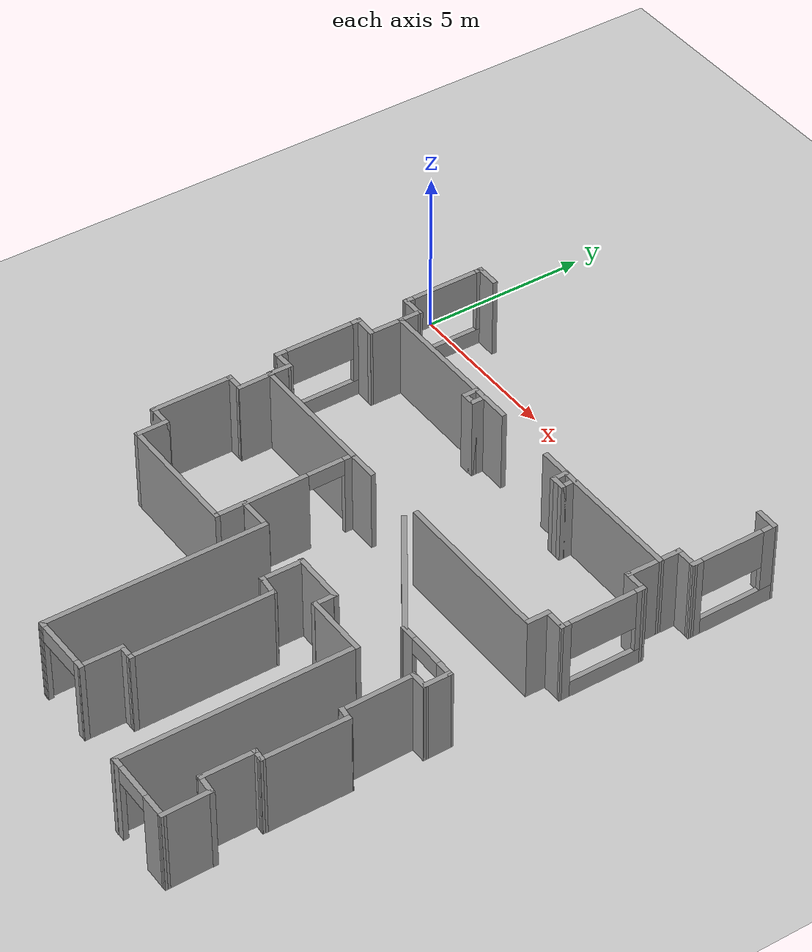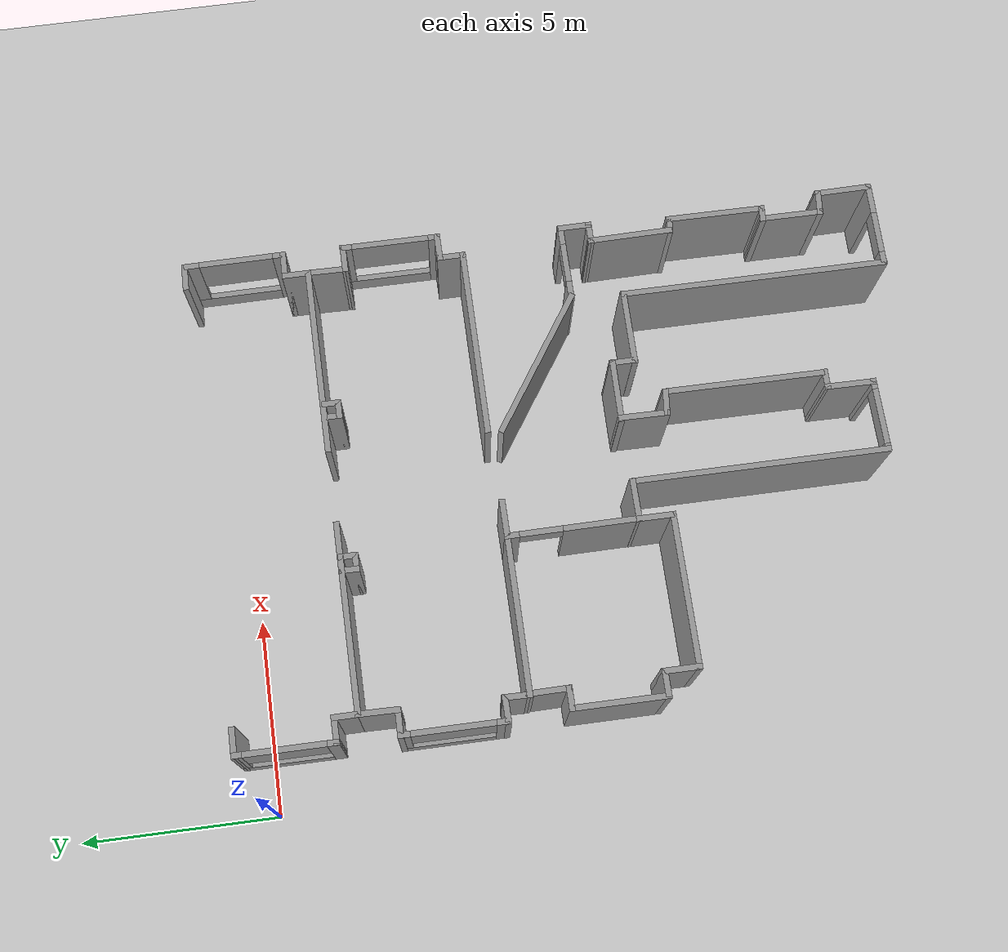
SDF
<sdf version="1.6">
 <world name="default">
  <model name="ground_plane">
   <static>1</static>
   <link name="link">
    <collision name="collision">
     <geometry><plane><normal>0 0 1</normal><size>100 100</size></plane></geometry>
     <surface><friction><ode><mu>100</mu><mu2>50</mu2></ode></friction></surface>
    </collision>
    <visual name="visual">
     <cast_shadows>0</cast_shadows>
     <geometry><plane><normal>0 0 1</normal><size>100 100</size></plane></geometry>
     <material>
      <script><uri>file://media/materials/scripts/gazebo.material</uri><name>Gazebo/Grey</name></script>
     </material>
    </visual>
   </link>
  </model>
  <model name="Ex-diei">
   <pose>7.71315 -3.61023 0 0 -0 0</pose>
   <link name="Wall_10">
    <collision name="Wall_10_Collision">
     <geometry><box><size>1.32907 0.15 2.5</size></box></geometry>
     <pose>0 0 1.25 0 -0 0</pose>
    </collision>
    <visual name="Wall_10_Visual">
     <pose>0 0 1.25 0 -0 0</pose>
     <geometry><box><size>1.32907 0.15 2.5</size></box></geometry>
     <material>
      <script><uri>file://media/materials/scripts/gazebo.material</uri><name>Gazebo/Grey</name></script>
      <ambient>1 1 1 1</ambient>
     </material>
    </visual>
    <pose>0.944777 -12.0468 0 0 -0 1.55789</pose>
   </link>
   <link name="Wall_11">
    <collision name="Wall_11_Collision">
     <geometry><box><size>0.5516 0.15 2.5</size></box></geometry>
     <pose>0 0 1.25 0 -0 0</pose>
    </collision>
    <visual name="Wall_11_Visual">
     <pose>0 0 1.25 0 -0 0</pose>
     <geometry><box><size>0.5516 0.15 2.5</size></box></geometry>
     <material>
      <script><uri>file://media/materials/scripts/gazebo.material</uri><name>Gazebo/Grey</name></script>
      <ambient>1 1 1 1</ambient>
     </material>
    </visual>
    <pose>1.15318 -11.4585 0 0 0 -0.004913</pose>
   </link>
   <link name="Wall_119">
    <collision name="Wall_119_Collision">
     <geometry><box><size>5 0.15 2.5</size></box></geometry>
     <pose>0 0 1.25 0 -0 0</pose>
    </collision>
    <visual name="Wall_119_Visual">
     <pose>0 0 1.25 0 -0 0</pose>
     <geometry><box><size>5 0.15 2.5</size></box></geometry>
     <material>
      <script><uri>file://media/materials/scripts/gazebo.material</uri><name>Gazebo/Grey</name></script>
      <ambient>1 1 1 1</ambient>
     </material>
    </visual>
    <pose>3.38195 1.30322 0 0 -0 0</pose>
   </link>
   <link name="Wall_12">
    <collision name="Wall_12_Collision">
     <geometry><box><size>4.25837 0.15 2.5</size></box></geometry>
     <pose>0 0 1.25 0 -0 0</pose>
    </collision>
    <visual name="Wall_12_Visual">
     <pose>0 0 1.25 0 -0 0</pose>
     <geometry><box><size>4.25837 0.15 2.5</size></box></geometry>
     <material>
      <script><uri>file://media/materials/scripts/gazebo.material</uri><name>Gazebo/Grey</name></script>
      <ambient>1 1 1 1</ambient>
     </material>
    </visual>
    <pose>1.35469 -9.4053 0 0 -0 1.56675</pose>
   </link>
   <link name="Wall_120">
    <collision name="Wall_120_Collision">
     <geometry><box><size>0.75 0.15 2.5</size></box></geometry>
     <pose>0 0 1.25 0 -0 0</pose>
    </collision>
    <visual name="Wall_120_Visual">
     <pose>0 0 1.25 0 -0 0</pose>
     <geometry><box><size>0.75 0.15 2.5</size></box></geometry>
     <material>
      <script><uri>file://media/materials/scripts/gazebo.material</uri><name>Gazebo/Grey</name></script>
      <ambient>1 1 1 1</ambient>
     </material>
    </visual>
    <pose>5.80695 1.60322 0 0 -0 1.5708</pose>
   </link>
   <link name="Wall_121">
    <collision name="Wall_121_Collision">
     <geometry><box><size>0.75 0.15 2.5</size></box></geometry>
     <pose>0 0 1.25 0 -0 0</pose>
    </collision>
    <visual name="Wall_121_Visual">
     <pose>0 0 1.25 0 -0 0</pose>
     <geometry><box><size>0.75 0.15 2.5</size></box></geometry>
     <material>
      <script><uri>file://media/materials/scripts/gazebo.material</uri><name>Gazebo/Grey</name></script>
      <ambient>1 1 1 1</ambient>
     </material>
    </visual>
    <pose>6.10695 1.90322 0 0 -0 0</pose>
   </link>
   <link name="Wall_122">
    <pose>6.39956 3.18474 0 0 -0 1.57656</pose>
    <visual name="Wall_122_Visual_0">
     <pose>-1.18243 0 1.25 0 -0 0</pose>
     <geometry><box><size>0.348224 0.15 2.5</size></box></geometry>
     <material>
      <script><uri>file://media/materials/scripts/gazebo.material</uri><name>Gazebo/Grey</name></script>
      <ambient>1 1 1 1</ambient>
     </material>
    </visual>
    <collision name="Wall_122_Collision_0">
     <geometry><box><size>0.348224 0.15 2.5</size></box></geometry>
     <pose>-1.18243 0 1.25 0 -0 0</pose>
    </collision>
    <visual name="Wall_122_Visual_1">
     <pose>0.174112 0 0.25 0 -0 0</pose>
     <geometry><box><size>2.36486 0.15 0.5</size></box></geometry>
     <material>
      <script><uri>file://media/materials/scripts/gazebo.material</uri><name>Gazebo/Grey</name></script>
      <ambient>1 1 1 1</ambient>
     </material>
    </visual>
    <collision name="Wall_122_Collision_1">
     <geometry><box><size>2.36486 0.15 0.5</size></box></geometry>
     <pose>0.174112 0 0.25 0 -0 0</pose>
    </collision>
    <visual name="Wall_122_Visual_2">
     <pose>1.12978 0 1.5 0 -0 0</pose>
     <geometry><box><size>0.453513 0.15 2</size></box></geometry>
     <material>
      <script><uri>file://media/materials/scripts/gazebo.material</uri><name>Gazebo/Grey</name></script>
      <ambient>1 1 1 1</ambient>
     </material>
    </visual>
    <collision name="Wall_122_Collision_2">
     <geometry><box><size>0.453513 0.15 2</size></box></geometry>
     <pose>1.12978 0 1.5 0 -0 0</pose>
    </collision>
    <visual name="Wall_122_Visual_3">
     <pose>-0.052644 0 1.9 0 -0 0</pose>
     <geometry><box><size>1.91135 0.15 1.2</size></box></geometry>
     <material>
      <script><uri>file://media/materials/scripts/gazebo.material</uri><name>Gazebo/Grey</name></script>
      <ambient>1 1 1 1</ambient>
     </material>
    </visual>
    <collision name="Wall_122_Collision_3">
     <geometry><box><size>1.91135 0.15 1.2</size></box></geometry>
     <pose>-0.052644 0 1.9 0 -0 0</pose>
    </collision>
   </link>
   <link name="Wall_123">
    <collision name="Wall_123_Collision">
     <geometry><box><size>0.716608 0.15 2.5</size></box></geometry>
     <pose>0 0 1.25 0 -0 0</pose>
    </collision>
    <visual name="Wall_123_Visual">
     <pose>0 0 1.25 0 -0 0</pose>
     <geometry><box><size>0.716608 0.15 2.5</size></box></geometry>
     <material>
      <script><uri>file://media/materials/scripts/gazebo.material</uri><name>Gazebo/Grey</name></script>
      <ambient>1 1 1 1</ambient>
     </material>
    </visual>
    <pose>6.10886 4.47426 0 0 -0 3.12641</pose>
   </link>
   <link name="Wall_13">
    <collision name="Wall_13_Collision">
     <geometry><box><size>0.707666 0.15 2.5</size></box></geometry>
     <pose>0 0 1.25 0 -0 0</pose>
    </collision>
    <visual name="Wall_13_Visual">
     <pose>0 0 1.25 0 -0 0</pose>
     <geometry><box><size>0.707666 0.15 2.5</size></box></geometry>
     <material>
      <script><uri>file://media/materials/scripts/gazebo.material</uri><name>Gazebo/Grey</name></script>
      <ambient>1 1 1 1</ambient>
     </material>
    </visual>
    <pose>1.08546 -7.32452 0 0 -0 3.046</pose>
   </link>
   <link name="Wall_132">
    <collision name="Wall_132_Collision">
     <geometry><box><size>5 0.15 2.5</size></box></geometry>
     <pose>0 0 1.25 0 -0 0</pose>
    </collision>
    <visual name="Wall_132_Visual">
     <pose>0 0 1.25 0 -0 0</pose>
     <geometry><box><size>5 0.15 2.5</size></box></geometry>
     <material>
      <script><uri>file://media/materials/scripts/gazebo.material</uri><name>Gazebo/Grey</name></script>
      <ambient>1 1 1 1</ambient>
     </material>
    </visual>
    <pose>3.36331 -2.7403 0 0 -0 0</pose>
   </link>
   <link name="Wall_133">
    <collision name="Wall_133_Collision">
     <geometry><box><size>0.75 0.15 2.5</size></box></geometry>
     <pose>0 0 1.25 0 -0 0</pose>
    </collision>
    <visual name="Wall_133_Visual">
     <pose>0 0 1.25 0 -0 0</pose>
     <geometry><box><size>0.75 0.15 2.5</size></box></geometry>
     <material>
      <script><uri>file://media/materials/scripts/gazebo.material</uri><name>Gazebo/Grey</name></script>
      <ambient>1 1 1 1</ambient>
     </material>
    </visual>
    <pose>5.78831 -2.4403 0 0 -0 1.5708</pose>
   </link>
   <link name="Wall_134">
    <collision name="Wall_134_Collision">
     <geometry><box><size>0.75 0.15 2.5</size></box></geometry>
     <pose>0 0 1.25 0 -0 0</pose>
    </collision>
    <visual name="Wall_134_Visual">
     <pose>0 0 1.25 0 -0 0</pose>
     <geometry><box><size>0.75 0.15 2.5</size></box></geometry>
     <material>
      <script><uri>file://media/materials/scripts/gazebo.material</uri><name>Gazebo/Grey</name></script>
      <ambient>1 1 1 1</ambient>
     </material>
    </visual>
    <pose>6.08831 -2.1403 0 0 -0 0</pose>
   </link>
   <link name="Wall_135">
    <pose>6.39016 -0.900619 0 0 -0 1.56931</pose>
    <visual name="Wall_135_Visual_0">
     <pose>-1.15835 0 1.25 0 -0 0</pose>
     <geometry><box><size>0.312668 0.15 2.5</size></box></geometry>
     <material>
      <script><uri>file://media/materials/scripts/gazebo.material</uri><name>Gazebo/Grey</name></script>
      <ambient>1 1 1 1</ambient>
     </material>
    </visual>
    <collision name="Wall_135_Collision_0">
     <geometry><box><size>0.312668 0.15 2.5</size></box></geometry>
     <pose>-1.15835 0 1.25 0 -0 0</pose>
    </collision>
    <visual name="Wall_135_Visual_1">
     <pose>0.156334 0 0.25 0 -0 0</pose>
     <geometry><box><size>2.3167 0.15 0.5</size></box></geometry>
     <material>
      <script><uri>file://media/materials/scripts/gazebo.material</uri><name>Gazebo/Grey</name></script>
      <ambient>1 1 1 1</ambient>
     </material>
    </visual>
    <collision name="Wall_135_Collision_1">
     <geometry><box><size>2.3167 0.15 0.5</size></box></geometry>
     <pose>0.156334 0 0.25 0 -0 0</pose>
    </collision>
    <visual name="Wall_135_Visual_2">
     <pose>1.16086 0 1.5 0 -0 0</pose>
     <geometry><box><size>0.30765 0.15 2</size></box></geometry>
     <material>
      <script><uri>file://media/materials/scripts/gazebo.material</uri><name>Gazebo/Grey</name></script>
      <ambient>1 1 1 1</ambient>
     </material>
    </visual>
    <collision name="Wall_135_Collision_2">
     <geometry><box><size>0.30765 0.15 2</size></box></geometry>
     <pose>1.16086 0 1.5 0 -0 0</pose>
    </collision>
    <visual name="Wall_135_Visual_3">
     <pose>0.002509 0 1.9 0 -0 0</pose>
     <geometry><box><size>2.00905 0.15 1.2</size></box></geometry>
     <material>
      <script><uri>file://media/materials/scripts/gazebo.material</uri><name>Gazebo/Grey</name></script>
      <ambient>1 1 1 1</ambient>
     </material>
    </visual>
    <collision name="Wall_135_Collision_3">
     <geometry><box><size>2.00905 0.15 1.2</size></box></geometry>
     <pose>0.002509 0 1.9 0 -0 0</pose>
    </collision>
   </link>
   <link name="Wall_136">
    <collision name="Wall_136_Collision">
     <geometry><box><size>0.75 0.15 2.5</size></box></geometry>
     <pose>0 0 1.25 0 -0 0</pose>
    </collision>
    <visual name="Wall_136_Visual">
     <pose>0 0 1.25 0 -0 0</pose>
     <geometry><box><size>0.75 0.15 2.5</size></box></geometry>
     <material>
      <script><uri>file://media/materials/scripts/gazebo.material</uri><name>Gazebo/Grey</name></script>
      <ambient>1 1 1 1</ambient>
     </material>
    </visual>
    <pose>6.09201 0.335366 0 0 -0 3.14159</pose>
   </link>
   <link name="Wall_137">
    <collision name="Wall_137_Collision">
     <geometry><box><size>1.11427 0.15 2.5</size></box></geometry>
     <pose>0 0 1.25 0 -0 0</pose>
    </collision>
    <visual name="Wall_137_Visual">
     <pose>0 0 1.25 0 -0 0</pose>
     <geometry><box><size>1.11427 0.15 2.5</size></box></geometry>
     <material>
      <script><uri>file://media/materials/scripts/gazebo.material</uri><name>Gazebo/Grey</name></script>
      <ambient>1 1 1 1</ambient>
     </material>
    </visual>
    <pose>5.79948 0.821141 0 0 -0 1.5553</pose>
   </link>
   <link name="Wall_139">
    <collision name="Wall_139_Collision">
     <geometry><box><size>0.5 0.15 2.5</size></box></geometry>
     <pose>0 0 1.25 0 -0 0</pose>
    </collision>
    <visual name="Wall_139_Visual">
     <pose>0 0 1.25 0 -0 0</pose>
     <geometry><box><size>0.5 0.15 2.5</size></box></geometry>
     <material>
      <script><uri>file://media/materials/scripts/gazebo.material</uri><name>Gazebo/Grey</name></script>
      <ambient>1 1 1 1</ambient>
     </material>
    </visual>
    <pose>1.81114 1.09434 0 0 0 -1.5708</pose>
   </link>
   <link name="Wall_14">
    <collision name="Wall_14_Collision">
     <geometry><box><size>1.32107 0.15 2.5</size></box></geometry>
     <pose>0 0 1.25 0 -0 0</pose>
    </collision>
    <visual name="Wall_14_Visual">
     <pose>0 0 1.25 0 -0 0</pose>
     <geometry><box><size>1.32107 0.15 2.5</size></box></geometry>
     <material>
      <script><uri>file://media/materials/scripts/gazebo.material</uri><name>Gazebo/Grey</name></script>
      <ambient>1 1 1 1</ambient>
     </material>
    </visual>
    <pose>0.807898 -6.71237 0 0 -0 1.55781</pose>
   </link>
   <link name="Wall_140">
    <collision name="Wall_140_Collision">
     <geometry><box><size>0.5 0.15 2.5</size></box></geometry>
     <pose>0 0 1.25 0 -0 0</pose>
    </collision>
    <visual name="Wall_140_Visual">
     <pose>0 0 1.25 0 -0 0</pose>
     <geometry><box><size>0.5 0.15 2.5</size></box></geometry>
     <material>
      <script><uri>file://media/materials/scripts/gazebo.material</uri><name>Gazebo/Grey</name></script>
      <ambient>1 1 1 1</ambient>
     </material>
    </visual>
    <pose>1.98614 0.919343 0 0 -0 0</pose>
   </link>
   <link name="Wall_141">
    <collision name="Wall_141_Collision">
     <geometry><box><size>0.5 0.15 2.5</size></box></geometry>
     <pose>0 0 1.25 0 -0 0</pose>
    </collision>
    <visual name="Wall_141_Visual">
     <pose>0 0 1.25 0 -0 0</pose>
     <geometry><box><size>0.5 0.15 2.5</size></box></geometry>
     <material>
      <script><uri>file://media/materials/scripts/gazebo.material</uri><name>Gazebo/Grey</name></script>
      <ambient>1 1 1 1</ambient>
     </material>
    </visual>
    <pose>2.16114 1.09434 0 0 -0 1.5708</pose>
   </link>
   <link name="Wall_15">
    <collision name="Wall_15_Collision">
     <geometry><box><size>1.67095 0.15 2.5</size></box></geometry>
     <pose>0 0 1.25 0 -0 0</pose>
    </collision>
    <visual name="Wall_15_Visual">
     <pose>0 0 1.25 0 -0 0</pose>
     <geometry><box><size>1.67095 0.15 2.5</size></box></geometry>
     <material>
      <script><uri>file://media/materials/scripts/gazebo.material</uri><name>Gazebo/Grey</name></script>
      <ambient>1 1 1 1</ambient>
     </material>
    </visual>
    <pose>1.55313 -6.13444 0 0 0 -0.01</pose>
   </link>
   <link name="Wall_16">
    <collision name="Wall_16_Collision">
     <geometry><box><size>0.726398 0.15 2.5</size></box></geometry>
     <pose>0 0 1.25 0 -0 0</pose>
    </collision>
    <visual name="Wall_16_Visual">
     <pose>0 0 1.25 0 -0 0</pose>
     <geometry><box><size>0.726398 0.15 2.5</size></box></geometry>
     <material>
      <script><uri>file://media/materials/scripts/gazebo.material</uri><name>Gazebo/Grey</name></script>
      <ambient>1 1 1 1</ambient>
     </material>
    </visual>
    <pose>2.30936 -6.43021 0 0 0 -1.55899</pose>
   </link>
   <link name="Wall_17">
    <collision name="Wall_17_Collision">
     <geometry><box><size>2.00096 0.15 2.5</size></box></geometry>
     <pose>0 0 1.25 0 -0 0</pose>
    </collision>
    <visual name="Wall_17_Visual">
     <pose>0 0 1.25 0 -0 0</pose>
     <geometry><box><size>2.00096 0.15 2.5</size></box></geometry>
     <material>
      <script><uri>file://media/materials/scripts/gazebo.material</uri><name>Gazebo/Grey</name></script>
      <ambient>1 1 1 1</ambient>
     </material>
    </visual>
    <pose>3.23063 -6.71457 0 0 0 -0.004108</pose>
   </link>
   <link name="Wall_18">
    <collision name="Wall_18_Collision">
     <geometry><box><size>7 0.15 2.5</size></box></geometry>
     <pose>0 0 1.25 0 -0 0</pose>
    </collision>
    <visual name="Wall_18_Visual">
     <pose>0 0 1.25 0 -0 0</pose>
     <geometry><box><size>7 0.15 2.5</size></box></geometry>
     <material>
      <script><uri>file://media/materials/scripts/gazebo.material</uri><name>Gazebo/Grey</name></script>
      <ambient>1 1 1 1</ambient>
     </material>
    </visual>
    <pose>4.1485 -10.151 0 0 0 -1.5708</pose>
   </link>
   <link name="Wall_19">
    <pose>5.23985 -13.5798 0 0 0 -0.010525</pose>
    <visual name="Wall_19_Visual_0">
     <pose>-0.977654 0 1.25 0 -0 0</pose>
     <geometry><box><size>0.362307 0.15 2.5</size></box></geometry>
     <material>
      <script><uri>file://media/materials/scripts/gazebo.material</uri><name>Gazebo/Grey</name></script>
      <ambient>1 1 1 1</ambient>
     </material>
    </visual>
    <collision name="Wall_19_Collision_0">
     <geometry><box><size>0.362307 0.15 2.5</size></box></geometry>
     <pose>-0.977654 0 1.25 0 -0 0</pose>
    </collision>
    <visual name="Wall_19_Visual_1">
     <pose>0.744469 0 1.25 0 -0 0</pose>
     <geometry><box><size>0.828677 0.15 2.5</size></box></geometry>
     <material>
      <script><uri>file://media/materials/scripts/gazebo.material</uri><name>Gazebo/Grey</name></script>
      <ambient>1 1 1 1</ambient>
     </material>
    </visual>
    <collision name="Wall_19_Collision_1">
     <geometry><box><size>0.828677 0.15 2.5</size></box></geometry>
     <pose>0.744469 0 1.25 0 -0 0</pose>
    </collision>
    <visual name="Wall_19_Visual_2">
     <pose>-0.233185 0 2.25 0 -0 0</pose>
     <geometry><box><size>1.12663 0.15 0.5</size></box></geometry>
     <material>
      <script><uri>file://media/materials/scripts/gazebo.material</uri><name>Gazebo/Grey</name></script>
      <ambient>1 1 1 1</ambient>
     </material>
    </visual>
    <collision name="Wall_19_Collision_2">
     <geometry><box><size>1.12663 0.15 0.5</size></box></geometry>
     <pose>-0.233185 0 2.25 0 -0 0</pose>
    </collision>
   </link>
   <link name="Wall_20">
    <collision name="Wall_20_Collision">
     <geometry><box><size>1.5 0.15 2.5</size></box></geometry>
     <pose>0 0 1.25 0 -0 0</pose>
    </collision>
    <visual name="Wall_20_Visual">
     <pose>0 0 1.25 0 -0 0</pose>
     <geometry><box><size>1.5 0.15 2.5</size></box></geometry>
     <material>
      <script><uri>file://media/materials/scripts/gazebo.material</uri><name>Gazebo/Grey</name></script>
      <ambient>1 1 1 1</ambient>
     </material>
    </visual>
    <pose>6.31599 -12.9162 0 0 -0 1.58206</pose>
   </link>
   <link name="Wall_21">
    <collision name="Wall_21_Collision">
     <geometry><box><size>0.694391 0.15 2.5</size></box></geometry>
     <pose>0 0 1.25 0 -0 0</pose>
    </collision>
    <visual name="Wall_21_Visual">
     <pose>0 0 1.25 0 -0 0</pose>
     <geometry><box><size>0.694391 0.15 2.5</size></box></geometry>
     <material>
      <script><uri>file://media/materials/scripts/gazebo.material</uri><name>Gazebo/Grey</name></script>
      <ambient>1 1 1 1</ambient>
     </material>
    </visual>
    <pose>6.04477 -12.2182 0 0 -0 3.05687</pose>
   </link>
   <link name="Wall_22">
    <collision name="Wall_22_Collision">
     <geometry><box><size>1.67064 0.15 2.5</size></box></geometry>
     <pose>0 0 1.25 0 -0 0</pose>
    </collision>
    <visual name="Wall_22_Visual">
     <pose>0 0 1.25 0 -0 0</pose>
     <geometry><box><size>1.67064 0.15 2.5</size></box></geometry>
     <material>
      <script><uri>file://media/materials/scripts/gazebo.material</uri><name>Gazebo/Grey</name></script>
      <ambient>1 1 1 1</ambient>
     </material>
    </visual>
    <pose>5.78435 -11.4348 0 0 -0 1.5666</pose>
   </link>
   <link name="Wall_23">
    <collision name="Wall_23_Collision">
     <geometry><box><size>0.447159 0.15 2.5</size></box></geometry>
     <pose>0 0 1.25 0 -0 0</pose>
    </collision>
    <visual name="Wall_23_Visual">
     <pose>0 0 1.25 0 -0 0</pose>
     <geometry><box><size>0.447159 0.15 2.5</size></box></geometry>
     <material>
      <script><uri>file://media/materials/scripts/gazebo.material</uri><name>Gazebo/Grey</name></script>
      <ambient>1 1 1 1</ambient>
     </material>
    </visual>
    <pose>5.92832 -10.6821 0 0 0 -0.051203</pose>
   </link>
   <link name="Wall_24">
    <collision name="Wall_24_Collision">
     <geometry><box><size>2.61047 0.15 2.5</size></box></geometry>
     <pose>0 0 1.25 0 -0 0</pose>
    </collision>
    <visual name="Wall_24_Visual">
     <pose>0 0 1.25 0 -0 0</pose>
     <geometry><box><size>2.61047 0.15 2.5</size></box></geometry>
     <material>
      <script><uri>file://media/materials/scripts/gazebo.material</uri><name>Gazebo/Grey</name></script>
      <ambient>1 1 1 1</ambient>
     </material>
    </visual>
    <pose>6.08397 -9.45949 0 0 -0 1.56489</pose>
   </link>
   <link name="Wall_25">
    <collision name="Wall_25_Collision">
     <geometry><box><size>0.465275 0.15 2.5</size></box></geometry>
     <pose>0 0 1.25 0 -0 0</pose>
    </collision>
    <visual name="Wall_25_Visual">
     <pose>0 0 1.25 0 -0 0</pose>
     <geometry><box><size>0.465275 0.15 2.5</size></box></geometry>
     <material>
      <script><uri>file://media/materials/scripts/gazebo.material</uri><name>Gazebo/Grey</name></script>
      <ambient>1 1 1 1</ambient>
     </material>
    </visual>
    <pose>5.92821 -8.21622 0 0 -0 3.01648</pose>
   </link>
   <link name="Wall_26">
    <collision name="Wall_26_Collision">
     <geometry><box><size>2.23033 0.15 2.5</size></box></geometry>
     <pose>0 0 1.25 0 -0 0</pose>
    </collision>
    <visual name="Wall_26_Visual">
     <pose>0 0 1.25 0 -0 0</pose>
     <geometry><box><size>2.23033 0.15 2.5</size></box></geometry>
     <material>
      <script><uri>file://media/materials/scripts/gazebo.material</uri><name>Gazebo/Grey</name></script>
      <ambient>1 1 1 1</ambient>
     </material>
    </visual>
    <pose>5.76519 -7.14985 0 0 -0 1.58351</pose>
   </link>
   <link name="Wall_27">
    <collision name="Wall_27_Collision">
     <geometry><box><size>0.603301 0.15 2.5</size></box></geometry>
     <pose>0 0 1.25 0 -0 0</pose>
    </collision>
    <visual name="Wall_27_Visual">
     <pose>0 0 1.25 0 -0 0</pose>
     <geometry><box><size>0.603301 0.15 2.5</size></box></geometry>
     <material>
      <script><uri>file://media/materials/scripts/gazebo.material</uri><name>Gazebo/Grey</name></script>
      <ambient>1 1 1 1</ambient>
     </material>
    </visual>
    <pose>5.97861 -6.1116 0 0 0 -0.008064</pose>
   </link>
   <link name="Wall_28">
    <collision name="Wall_28_Collision">
     <geometry><box><size>0.887652 0.15 2.5</size></box></geometry>
     <pose>0 0 1.25 0 -0 0</pose>
    </collision>
    <visual name="Wall_28_Visual">
     <pose>0 0 1.25 0 -0 0</pose>
     <geometry><box><size>0.887652 0.15 2.5</size></box></geometry>
     <material>
      <script><uri>file://media/materials/scripts/gazebo.material</uri><name>Gazebo/Grey</name></script>
      <ambient>1 1 1 1</ambient>
     </material>
    </visual>
    <pose>6.20344 -5.73799 0 0 -0 1.57573</pose>
   </link>
   <link name="Wall_29">
    <pose>5.23289 -5.36917 0 0 -0 3.14159</pose>
    <visual name="Wall_29_Visual_0">
     <pose>-0.77648 0 1.25 0 -0 0</pose>
     <geometry><box><size>0.534502 0.15 2.5</size></box></geometry>
     <material>
      <script><uri>file://media/materials/scripts/gazebo.material</uri><name>Gazebo/Grey</name></script>
      <ambient>1 1 1 1</ambient>
     </material>
    </visual>
    <collision name="Wall_29_Collision_0">
     <geometry><box><size>0.534502 0.15 2.5</size></box></geometry>
     <pose>-0.77648 0 1.25 0 -0 0</pose>
    </collision>
    <visual name="Wall_29_Visual_1">
     <pose>0.795903 0 1.25 0 -0 0</pose>
     <geometry><box><size>0.495656 0.15 2.5</size></box></geometry>
     <material>
      <script><uri>file://media/materials/scripts/gazebo.material</uri><name>Gazebo/Grey</name></script>
      <ambient>1 1 1 1</ambient>
     </material>
    </visual>
    <collision name="Wall_29_Collision_1">
     <geometry><box><size>0.495656 0.15 2.5</size></box></geometry>
     <pose>0.795903 0 1.25 0 -0 0</pose>
    </collision>
    <visual name="Wall_29_Visual_2">
     <pose>0.019423 0 2.25 0 -0 0</pose>
     <geometry><box><size>1.0573 0.15 0.5</size></box></geometry>
     <material>
      <script><uri>file://media/materials/scripts/gazebo.material</uri><name>Gazebo/Grey</name></script>
      <ambient>1 1 1 1</ambient>
     </material>
    </visual>
    <collision name="Wall_29_Collision_2">
     <geometry><box><size>1.0573 0.15 0.5</size></box></geometry>
     <pose>0.019423 0 2.25 0 -0 0</pose>
    </collision>
   </link>
   <link name="Wall_30">
    <collision name="Wall_30_Collision">
     <geometry><box><size>4.20959 0.15 2.5</size></box></geometry>
     <pose>0 0 1.25 0 -0 0</pose>
    </collision>
    <visual name="Wall_30_Visual">
     <pose>0 0 1.25 0 -0 0</pose>
     <geometry><box><size>4.20959 0.15 2.5</size></box></geometry>
     <material>
      <script><uri>file://media/materials/scripts/gazebo.material</uri><name>Gazebo/Grey</name></script>
      <ambient>1 1 1 1</ambient>
     </material>
    </visual>
    <pose>2.57899 -4.23767 0 0 -0 2.55029</pose>
   </link>
   <link name="Wall_5">
    <collision name="Wall_5_Collision">
     <geometry><box><size>1.04089 0.15 2.5</size></box></geometry>
     <pose>0 0 1.25 0 -0 0</pose>
    </collision>
    <visual name="Wall_5_Visual">
     <pose>0 0 1.25 0 -0 0</pose>
     <geometry><box><size>1.04089 0.15 2.5</size></box></geometry>
     <material>
      <script><uri>file://media/materials/scripts/gazebo.material</uri><name>Gazebo/Grey</name></script>
      <ambient>1 1 1 1</ambient>
     </material>
    </visual>
    <pose>-1.4316 -2.84662 0 0 0 -3.13391</pose>
   </link>
   <link name="Wall_59">
    <collision name="Wall_59_Collision">
     <geometry><box><size>4.90246 0.15 2.5</size></box></geometry>
     <pose>0 0 1.25 0 -0 0</pose>
    </collision>
    <visual name="Wall_59_Visual">
     <pose>0 0 1.25 0 -0 0</pose>
     <geometry><box><size>4.90246 0.15 2.5</size></box></geometry>
     <material>
      <script><uri>file://media/materials/scripts/gazebo.material</uri><name>Gazebo/Grey</name></script>
      <ambient>1 1 1 1</ambient>
     </material>
    </visual>
    <pose>-3.3966 1.30411 0 0 -0 3.14142</pose>
   </link>
   <link name="Wall_6">
    <pose>-1.85855 -4.50368 0 0 0 -1.56488</pose>
    <visual name="Wall_6_Visual_0">
     <pose>-1.54048 0 1.25 0 -0 0</pose>
     <geometry><box><size>0.376373 0.15 2.5</size></box></geometry>
     <material>
      <script><uri>file://media/materials/scripts/gazebo.material</uri><name>Gazebo/Grey</name></script>
      <ambient>1 1 1 1</ambient>
     </material>
    </visual>
    <collision name="Wall_6_Collision_0">
     <geometry><box><size>0.376373 0.15 2.5</size></box></geometry>
     <pose>-1.54048 0 1.25 0 -0 0</pose>
    </collision>
    <visual name="Wall_6_Visual_1">
     <pose>0.736559 0 1.25 0 -0 0</pose>
     <geometry><box><size>1.98422 0.15 2.5</size></box></geometry>
     <material>
      <script><uri>file://media/materials/scripts/gazebo.material</uri><name>Gazebo/Grey</name></script>
      <ambient>1 1 1 1</ambient>
     </material>
    </visual>
    <collision name="Wall_6_Collision_1">
     <geometry><box><size>1.98422 0.15 2.5</size></box></geometry>
     <pose>0.736559 0 1.25 0 -0 0</pose>
    </collision>
    <visual name="Wall_6_Visual_2">
     <pose>-0.803922 0 2.25 0 -0 0</pose>
     <geometry><box><size>1.09674 0.15 0.5</size></box></geometry>
     <material>
      <script><uri>file://media/materials/scripts/gazebo.material</uri><name>Gazebo/Grey</name></script>
      <ambient>1 1 1 1</ambient>
     </material>
    </visual>
    <collision name="Wall_6_Collision_2">
     <geometry><box><size>1.09674 0.15 0.5</size></box></geometry>
     <pose>-0.803922 0 2.25 0 -0 0</pose>
    </collision>
   </link>
   <link name="Wall_60">
    <collision name="Wall_60_Collision">
     <geometry><box><size>0.729453 0.15 2.5</size></box></geometry>
     <pose>0 0 1.25 0 -0 0</pose>
    </collision>
    <visual name="Wall_60_Visual">
     <pose>0 0 1.25 0 -0 0</pose>
     <geometry><box><size>0.729453 0.15 2.5</size></box></geometry>
     <material>
      <script><uri>file://media/materials/scripts/gazebo.material</uri><name>Gazebo/Grey</name></script>
      <ambient>1 1 1 1</ambient>
     </material>
    </visual>
    <pose>-5.77425 1.59388 0 0 -0 1.57569</pose>
   </link>
   <link name="Wall_61">
    <collision name="Wall_61_Collision">
     <geometry><box><size>0.743494 0.15 2.5</size></box></geometry>
     <pose>0 0 1.25 0 -0 0</pose>
    </collision>
    <visual name="Wall_61_Visual">
     <pose>0 0 1.25 0 -0 0</pose>
     <geometry><box><size>0.743494 0.15 2.5</size></box></geometry>
     <material>
      <script><uri>file://media/materials/scripts/gazebo.material</uri><name>Gazebo/Grey</name></script>
      <ambient>1 1 1 1</ambient>
     </material>
    </visual>
    <pose>-6.0724 1.88107 0 0 0 -3.13427</pose>
   </link>
   <link name="Wall_62">
    <pose>-6.37099 3.1091 0 0 -0 1.56876</pose>
    <visual name="Wall_62_Visual_0">
     <pose>-1.15303 0 1.25 0 -0 0</pose>
     <geometry><box><size>0.304344 0.15 2.5</size></box></geometry>
     <material>
      <script><uri>file://media/materials/scripts/gazebo.material</uri><name>Gazebo/Grey</name></script>
      <ambient>1 1 1 1</ambient>
     </material>
    </visual>
    <collision name="Wall_62_Collision_0">
     <geometry><box><size>0.304344 0.15 2.5</size></box></geometry>
     <pose>-1.15303 0 1.25 0 -0 0</pose>
    </collision>
    <visual name="Wall_62_Visual_1">
     <pose>0.152172 0 0.25 0 -0 0</pose>
     <geometry><box><size>2.30606 0.15 0.5</size></box></geometry>
     <material>
      <script><uri>file://media/materials/scripts/gazebo.material</uri><name>Gazebo/Grey</name></script>
      <ambient>1 1 1 1</ambient>
     </material>
    </visual>
    <collision name="Wall_62_Collision_1">
     <geometry><box><size>2.30606 0.15 0.5</size></box></geometry>
     <pose>0.152172 0 0.25 0 -0 0</pose>
    </collision>
    <visual name="Wall_62_Visual_2">
     <pose>1.17637 0 1.5 0 -0 0</pose>
     <geometry><box><size>0.257675 0.15 2</size></box></geometry>
     <material>
      <script><uri>file://media/materials/scripts/gazebo.material</uri><name>Gazebo/Grey</name></script>
      <ambient>1 1 1 1</ambient>
     </material>
    </visual>
    <collision name="Wall_62_Collision_2">
     <geometry><box><size>0.257675 0.15 2</size></box></geometry>
     <pose>1.17637 0 1.5 0 -0 0</pose>
    </collision>
    <visual name="Wall_62_Visual_3">
     <pose>0.023334 0 1.9 0 -0 0</pose>
     <geometry><box><size>2.04839 0.15 1.2</size></box></geometry>
     <material>
      <script><uri>file://media/materials/scripts/gazebo.material</uri><name>Gazebo/Grey</name></script>
      <ambient>1 1 1 1</ambient>
     </material>
    </visual>
    <collision name="Wall_62_Collision_3">
     <geometry><box><size>2.04839 0.15 1.2</size></box></geometry>
     <pose>0.023334 0 1.9 0 -0 0</pose>
    </collision>
   </link>
   <link name="Wall_63">
    <collision name="Wall_63_Collision">
     <geometry><box><size>0.771754 0.15 2.5</size></box></geometry>
     <pose>0 0 1.25 0 -0 0</pose>
    </collision>
    <visual name="Wall_63_Visual">
     <pose>0 0 1.25 0 -0 0</pose>
     <geometry><box><size>0.771754 0.15 2.5</size></box></geometry>
     <material>
      <script><uri>file://media/materials/scripts/gazebo.material</uri><name>Gazebo/Grey</name></script>
      <ambient>1 1 1 1</ambient>
     </material>
    </visual>
    <pose>-6.05761 4.33713 0 0 0 -0.006993</pose>
   </link>
   <link name="Wall_7">
    <collision name="Wall_7_Collision">
     <geometry><box><size>1.12384 0.15 2.5</size></box></geometry>
     <pose>0 0 1.25 0 -0 0</pose>
    </collision>
    <visual name="Wall_7_Visual">
     <pose>0 0 1.25 0 -0 0</pose>
     <geometry><box><size>1.12384 0.15 2.5</size></box></geometry>
     <material>
      <script><uri>file://media/materials/scripts/gazebo.material</uri><name>Gazebo/Grey</name></script>
      <ambient>1 1 1 1</ambient>
     </material>
    </visual>
    <pose>-1.37054 -6.15401 0 0 -0 0.00679</pose>
   </link>
   <link name="Wall_74">
    <collision name="Wall_74_Collision">
     <geometry><box><size>4.11957 0.15 2.5</size></box></geometry>
     <pose>0 0 1.25 0 -0 0</pose>
    </collision>
    <visual name="Wall_74_Visual">
     <pose>0 0 1.25 0 -0 0</pose>
     <geometry><box><size>4.11957 0.15 2.5</size></box></geometry>
     <material>
      <script><uri>file://media/materials/scripts/gazebo.material</uri><name>Gazebo/Grey</name></script>
      <ambient>1 1 1 1</ambient>
     </material>
    </visual>
    <pose>-3.86182 -2.84788 0 0 -0 3.1405</pose>
   </link>
   <link name="Wall_75">
    <collision name="Wall_75_Collision">
     <geometry><box><size>0.754462 0.15 2.5</size></box></geometry>
     <pose>0 0 1.25 0 -0 0</pose>
    </collision>
    <visual name="Wall_75_Visual">
     <pose>0 0 1.25 0 -0 0</pose>
     <geometry><box><size>0.754462 0.15 2.5</size></box></geometry>
     <material>
      <script><uri>file://media/materials/scripts/gazebo.material</uri><name>Gazebo/Grey</name></script>
      <ambient>1 1 1 1</ambient>
     </material>
    </visual>
    <pose>-5.84012 -2.54788 0 0 -0 1.54934</pose>
   </link>
   <link name="Wall_76">
    <collision name="Wall_76_Collision">
     <geometry><box><size>0.724827 0.15 2.5</size></box></geometry>
     <pose>0 0 1.25 0 -0 0</pose>
    </collision>
    <visual name="Wall_76_Visual">
     <pose>0 0 1.25 0 -0 0</pose>
     <geometry><box><size>0.724827 0.15 2.5</size></box></geometry>
     <material>
      <script><uri>file://media/materials/scripts/gazebo.material</uri><name>Gazebo/Grey</name></script>
      <ambient>1 1 1 1</ambient>
     </material>
    </visual>
    <pose>-6.12104 -2.24788 0 0 0 -3.13407</pose>
   </link>
   <link name="Wall_77">
    <pose>-6.40412 -0.95004 0 0 -0 1.5708</pose>
    <visual name="Wall_77_Visual_0">
     <pose>-1.1984 0 1.25 0 -0 0</pose>
     <geometry><box><size>0.353208 0.15 2.5</size></box></geometry>
     <material>
      <script><uri>file://media/materials/scripts/gazebo.material</uri><name>Gazebo/Grey</name></script>
      <ambient>1 1 1 1</ambient>
     </material>
    </visual>
    <collision name="Wall_77_Collision_0">
     <geometry><box><size>0.353208 0.15 2.5</size></box></geometry>
     <pose>-1.1984 0 1.25 0 -0 0</pose>
    </collision>
    <visual name="Wall_77_Visual_1">
     <pose>0.176604 0 0.25 0 -0 0</pose>
     <geometry><box><size>2.39679 0.15 0.5</size></box></geometry>
     <material>
      <script><uri>file://media/materials/scripts/gazebo.material</uri><name>Gazebo/Grey</name></script>
      <ambient>1 1 1 1</ambient>
     </material>
    </visual>
    <collision name="Wall_77_Collision_1">
     <geometry><box><size>2.39679 0.15 0.5</size></box></geometry>
     <pose>0.176604 0 0.25 0 -0 0</pose>
    </collision>
    <visual name="Wall_77_Visual_2">
     <pose>1.22057 0 1.5 0 -0 0</pose>
     <geometry><box><size>0.308858 0.15 2</size></box></geometry>
     <material>
      <script><uri>file://media/materials/scripts/gazebo.material</uri><name>Gazebo/Grey</name></script>
      <ambient>1 1 1 1</ambient>
     </material>
    </visual>
    <collision name="Wall_77_Collision_2">
     <geometry><box><size>0.308858 0.15 2</size></box></geometry>
     <pose>1.22057 0 1.5 0 -0 0</pose>
    </collision>
    <visual name="Wall_77_Visual_3">
     <pose>0.022175 0 1.9 0 -0 0</pose>
     <geometry><box><size>2.08793 0.15 1.2</size></box></geometry>
     <material>
      <script><uri>file://media/materials/scripts/gazebo.material</uri><name>Gazebo/Grey</name></script>
      <ambient>1 1 1 1</ambient>
     </material>
    </visual>
    <collision name="Wall_77_Collision_3">
     <geometry><box><size>2.08793 0.15 1.2</size></box></geometry>
     <pose>0.022175 0 1.9 0 -0 0</pose>
    </collision>
   </link>
   <link name="Wall_78">
    <collision name="Wall_78_Collision">
     <geometry><box><size>0.770497 0.15 2.5</size></box></geometry>
     <pose>0 0 1.25 0 -0 0</pose>
    </collision>
    <visual name="Wall_78_Visual">
     <pose>0 0 1.25 0 -0 0</pose>
     <geometry><box><size>0.770497 0.15 2.5</size></box></geometry>
     <material>
      <script><uri>file://media/materials/scripts/gazebo.material</uri><name>Gazebo/Grey</name></script>
      <ambient>1 1 1 1</ambient>
     </material>
    </visual>
    <pose>-6.09822 0.345826 0 0 0 -0.013324</pose>
   </link>
   <link name="Wall_79">
    <collision name="Wall_79_Collision">
     <geometry><box><size>1.1139 0.15 2.5</size></box></geometry>
     <pose>0 0 1.25 0 -0 0</pose>
    </collision>
    <visual name="Wall_79_Visual">
     <pose>0 0 1.25 0 -0 0</pose>
     <geometry><box><size>1.1139 0.15 2.5</size></box></geometry>
     <material>
      <script><uri>file://media/materials/scripts/gazebo.material</uri><name>Gazebo/Grey</name></script>
      <ambient>1 1 1 1</ambient>
     </material>
    </visual>
    <pose>-5.78041 0.823105 0 0 -0 1.55504</pose>
   </link>
   <link name="Wall_8">
    <collision name="Wall_8_Collision">
     <geometry><box><size>6.64597 0.15 2.5</size></box></geometry>
     <pose>0 0 1.25 0 -0 0</pose>
    </collision>
    <visual name="Wall_8_Visual">
     <pose>0 0 1.25 0 -0 0</pose>
     <geometry><box><size>6.64597 0.15 2.5</size></box></geometry>
     <material>
      <script><uri>file://media/materials/scripts/gazebo.material</uri><name>Gazebo/Grey</name></script>
      <ambient>1 1 1 1</ambient>
     </material>
    </visual>
    <pose>-0.876523 -9.40522 0 0 0 -1.57064</pose>
   </link>
   <link name="Wall_81">
    <collision name="Wall_81_Collision">
     <geometry><box><size>0.5 0.15 2.5</size></box></geometry>
     <pose>0 0 1.25 0 -0 0</pose>
    </collision>
    <visual name="Wall_81_Visual">
     <pose>0 0 1.25 0 -0 0</pose>
     <geometry><box><size>0.5 0.15 2.5</size></box></geometry>
     <material>
      <script><uri>file://media/materials/scripts/gazebo.material</uri><name>Gazebo/Grey</name></script>
      <ambient>1 1 1 1</ambient>
     </material>
    </visual>
    <pose>-2.20833 1.10917 0 0 0 -1.5708</pose>
   </link>
   <link name="Wall_82">
    <collision name="Wall_82_Collision">
     <geometry><box><size>0.5 0.15 2.5</size></box></geometry>
     <pose>0 0 1.25 0 -0 0</pose>
    </collision>
    <visual name="Wall_82_Visual">
     <pose>0 0 1.25 0 -0 0</pose>
     <geometry><box><size>0.5 0.15 2.5</size></box></geometry>
     <material>
      <script><uri>file://media/materials/scripts/gazebo.material</uri><name>Gazebo/Grey</name></script>
      <ambient>1 1 1 1</ambient>
     </material>
    </visual>
    <pose>-2.03333 0.934167 0 0 -0 0</pose>
   </link>
   <link name="Wall_83">
    <collision name="Wall_83_Collision">
     <geometry><box><size>0.5 0.15 2.5</size></box></geometry>
     <pose>0 0 1.25 0 -0 0</pose>
    </collision>
    <visual name="Wall_83_Visual">
     <pose>0 0 1.25 0 -0 0</pose>
     <geometry><box><size>0.5 0.15 2.5</size></box></geometry>
     <material>
      <script><uri>file://media/materials/scripts/gazebo.material</uri><name>Gazebo/Grey</name></script>
      <ambient>1 1 1 1</ambient>
     </material>
    </visual>
    <pose>-1.85833 1.10917 0 0 -0 1.5708</pose>
   </link>
   <link name="Wall_86">
    <collision name="Wall_86_Collision">
     <geometry><box><size>1 0.15 2.5</size></box></geometry>
     <pose>0 0 1.25 0 -0 0</pose>
    </collision>
    <visual name="Wall_86_Visual">
     <pose>0 0 1.25 0 -0 0</pose>
     <geometry><box><size>1 0.15 2.5</size></box></geometry>
     <material>
      <script><uri>file://media/materials/scripts/gazebo.material</uri><name>Gazebo/Grey</name></script>
      <ambient>1 1 1 1</ambient>
     </material>
    </visual>
    <pose>-1.85745 -6.58232 0 0 0 -1.5708</pose>
   </link>
   <link name="Wall_87">
    <collision name="Wall_87_Collision">
     <geometry><box><size>4 0.15 2.5</size></box></geometry>
     <pose>0 0 1.25 0 -0 0</pose>
    </collision>
    <visual name="Wall_87_Visual">
     <pose>0 0 1.25 0 -0 0</pose>
     <geometry><box><size>4 0.15 2.5</size></box></geometry>
     <material>
      <script><uri>file://media/materials/scripts/gazebo.material</uri><name>Gazebo/Grey</name></script>
      <ambient>1 1 1 1</ambient>
     </material>
    </visual>
    <pose>-3.78245 -7.00732 0 0 -0 3.14159</pose>
   </link>
   <link name="Wall_88">
    <collision name="Wall_88_Collision">
     <geometry><box><size>1 0.15 2.5</size></box></geometry>
     <pose>0 0 1.25 0 -0 0</pose>
    </collision>
    <visual name="Wall_88_Visual">
     <pose>0 0 1.25 0 -0 0</pose>
     <geometry><box><size>1 0.15 2.5</size></box></geometry>
     <material>
      <script><uri>file://media/materials/scripts/gazebo.material</uri><name>Gazebo/Grey</name></script>
      <ambient>1 1 1 1</ambient>
     </material>
    </visual>
    <pose>-5.70745 -6.58232 0 0 -0 1.5708</pose>
   </link>
   <link name="Wall_89">
    <collision name="Wall_89_Collision">
     <geometry><box><size>0.75 0.15 2.5</size></box></geometry>
     <pose>0 0 1.25 0 -0 0</pose>
    </collision>
    <visual name="Wall_89_Visual">
     <pose>0 0 1.25 0 -0 0</pose>
     <geometry><box><size>0.75 0.15 2.5</size></box></geometry>
     <material>
      <script><uri>file://media/materials/scripts/gazebo.material</uri><name>Gazebo/Grey</name></script>
      <ambient>1 1 1 1</ambient>
     </material>
    </visual>
    <pose>-6.00745 -6.15732 0 0 -0 3.14159</pose>
   </link>
   <link name="Wall_9">
    <pose>0.038177 -12.6447 0 0 -0 0.009346</pose>
    <visual name="Wall_9_Visual_0">
     <pose>-0.8764 0 1.25 0 -0 0</pose>
     <geometry><box><size>0.210479 0.15 2.5</size></box></geometry>
     <material>
      <script><uri>file://media/materials/scripts/gazebo.material</uri><name>Gazebo/Grey</name></script>
      <ambient>1 1 1 1</ambient>
     </material>
    </visual>
    <collision name="Wall_9_Collision_0">
     <geometry><box><size>0.210479 0.15 2.5</size></box></geometry>
     <pose>-0.8764 0 1.25 0 -0 0</pose>
    </collision>
    <visual name="Wall_9_Visual_1">
     <pose>0.839699 0 1.25 0 -0 0</pose>
     <geometry><box><size>0.283881 0.15 2.5</size></box></geometry>
     <material>
      <script><uri>file://media/materials/scripts/gazebo.material</uri><name>Gazebo/Grey</name></script>
      <ambient>1 1 1 1</ambient>
     </material>
    </visual>
    <collision name="Wall_9_Collision_1">
     <geometry><box><size>0.283881 0.15 2.5</size></box></geometry>
     <pose>0.839699 0 1.25 0 -0 0</pose>
    </collision>
    <visual name="Wall_9_Visual_2">
     <pose>-0.036701 0 2.25 0 -0 0</pose>
     <geometry><box><size>1.46892 0.15 0.5</size></box></geometry>
     <material>
      <script><uri>file://media/materials/scripts/gazebo.material</uri><name>Gazebo/Grey</name></script>
      <ambient>1 1 1 1</ambient>
     </material>
    </visual>
    <collision name="Wall_9_Collision_2">
     <geometry><box><size>1.46892 0.15 0.5</size></box></geometry>
     <pose>-0.036701 0 2.25 0 -0 0</pose>
    </collision>
   </link>
   <link name="Wall_90">
    <collision name="Wall_90_Collision">
     <geometry><box><size>2.5 0.15 2.5</size></box></geometry>
     <pose>0 0 1.25 0 -0 0</pose>
    </collision>
    <visual name="Wall_90_Visual">
     <pose>0 0 1.25 0 -0 0</pose>
     <geometry><box><size>2.5 0.15 2.5</size></box></geometry>
     <material>
      <script><uri>file://media/materials/scripts/gazebo.material</uri><name>Gazebo/Grey</name></script>
      <ambient>1 1 1 1</ambient>
     </material>
    </visual>
    <pose>-6.30745 -4.98232 0 0 -0 1.5708</pose>
   </link>
   <link name="Wall_91">
    <collision name="Wall_91_Collision">
     <geometry><box><size>0.640621 0.15 2.5</size></box></geometry>
     <pose>0 0 1.25 0 -0 0</pose>
    </collision>
    <visual name="Wall_91_Visual">
     <pose>0 0 1.25 0 -0 0</pose>
     <geometry><box><size>0.640621 0.15 2.5</size></box></geometry>
     <material>
      <script><uri>file://media/materials/scripts/gazebo.material</uri><name>Gazebo/Grey</name></script>
      <ambient>1 1 1 1</ambient>
     </material>
    </visual>
    <pose>-6.06214 -3.80732 0 0 -0 0</pose>
   </link>
   <link name="Wall_92">
    <collision name="Wall_92_Collision">
     <geometry><box><size>1.13566 0.15 2.5</size></box></geometry>
     <pose>0 0 1.25 0 -0 0</pose>
    </collision>
    <visual name="Wall_92_Visual">
     <pose>0 0 1.25 0 -0 0</pose>
     <geometry><box><size>1.13566 0.15 2.5</size></box></geometry>
     <material>
      <script><uri>file://media/materials/scripts/gazebo.material</uri><name>Gazebo/Grey</name></script>
      <ambient>1 1 1 1</ambient>
     </material>
    </visual>
    <pose>-5.81653 -3.31478 0 0 -0 1.58027</pose>
   </link>
   <static>1</static>
  </model>
 </world>
</sdf>
